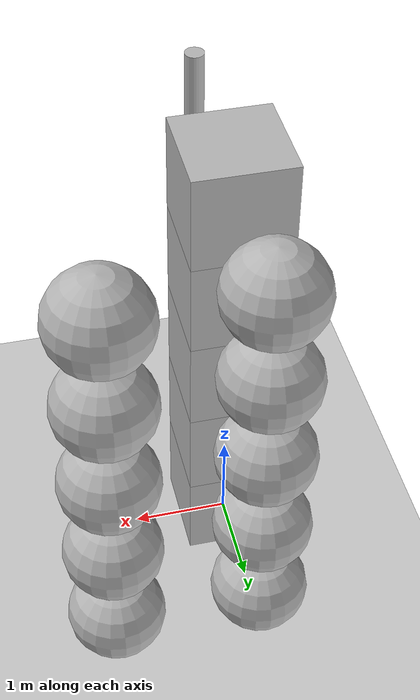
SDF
<?xml version="1.0" ?>
<sdf version="1.4">
  <world name="default">
    <include>
      <uri>model://ground_plane</uri>
    </include>
    <include>
      <uri>model://sun</uri>
    </include>
    <model name="box_1">
      <pose>0 0 .5 0 0 0</pose>
      <link name="link">
        <collision name="collision">
          <geometry>
            <box>
              <size>1 1 1</size>
            </box>
          </geometry>
        </collision>
        <visual name="visual">
          <geometry>
            <box>
              <size>1 1 1</size>
            </box>
          </geometry>
          <material>
            <script>Gazebo/WoodPallet</script>
          </material>
        </visual>
      </link>
    </model>
    <model name="box_2">
      <pose>0 0 1.5 0 0 0</pose>
      <link name="link">
        <collision name="collision">
          <geometry>
            <box>
              <size>1 1 1</size>
            </box>
          </geometry>
        </collision>
        <visual name="visual">
          <geometry>
            <box>
              <size>1 1 1</size>
            </box>
          </geometry>
          <material>
            <script>Gazebo/WoodPallet</script>
          </material>
        </visual>
      </link>
    </model>
    <model name="box_3">
      <pose>0 0 2.5 0 0 0</pose>
      <link name="link">
        <collision name="collision">
          <geometry>
            <box>
              <size>1 1 1</size>
            </box>
          </geometry>
        </collision>
        <visual name="visual">
          <geometry>
            <box>
              <size>1 1 1</size>
            </box>
          </geometry>
          <material>
            <script>Gazebo/WoodPallet</script>
          </material>
        </visual>
      </link>
    </model>
    <model name="box_4">
      <pose>0 0 3.5 0 0 0</pose>
      <link name="link">
        <collision name="collision">
          <geometry>
            <box>
              <size>1 1 1</size>
            </box>
          </geometry>
        </collision>
        <visual name="visual">
          <geometry>
            <box>
              <size>1 1 1</size>
            </box>
          </geometry>
          <material>
            <script>Gazebo/WoodPallet</script>
          </material>
        </visual>
      </link>
    </model>
    <model name="box_5">
      <pose>0 0 4.5 0 0 0</pose>
      <link name="link">
        <collision name="collision">
          <geometry>
            <box>
              <size>1 1 1</size>
            </box>
          </geometry>
        </collision>
        <visual name="visual">
          <geometry>
            <box>
              <size>1 1 1</size>
            </box>
          </geometry>
          <material>
            <script>Gazebo/WoodPallet</script>
          </material>
        </visual>
      </link>
    </model>
    <model name="sphere_1">
      <pose>0 1.5 0.5 0 0 0</pose>
      <link name="link">
        <collision name="collision">
          <geometry>
            <sphere>
              <radius>0.5</radius>
            </sphere>
          </geometry>
          <surface>
            <contact>
              <ode>
                <soft_erp>1.0</soft_erp>
                <max_vel>0</max_vel>
              </ode>
            </contact>
          </surface>
        </collision>
        <visual name="visual">
          <geometry>
            <sphere>
              <radius>0.5</radius>
            </sphere>
          </geometry>
          <material>
            <script>Gazebo/WoodPallet</script>
          </material>
        </visual>
      </link>
    </model>
    <model name="sphere_2">
      <pose>0 1.5 1.5 0 0 0</pose>
      <link name="link">
        <collision name="collision">
          <geometry>
            <sphere>
              <radius>0.5</radius>
            </sphere>
          </geometry>
          <surface>
            <contact>
              <ode>
                <soft_erp>1.0</soft_erp>
                <max_vel>0</max_vel>
              </ode>
            </contact>
          </surface>
        </collision>
        <visual name="visual">
          <geometry>
            <sphere>
              <radius>0.5</radius>
            </sphere>
          </geometry>
          <material>
            <script>Gazebo/WoodPallet</script>
          </material>
        </visual>
      </link>
    </model>
    <model name="sphere_3">
      <pose>0 1.5 2.5 0 0 0</pose>
      <link name="link">
        <collision name="collision">
          <geometry>
            <sphere>
              <radius>0.5</radius>
            </sphere>
          </geometry>
          <surface>
            <contact>
              <ode>
                <soft_erp>1.0</soft_erp>
                <max_vel>0</max_vel>
              </ode>
            </contact>
          </surface>
        </collision>
        <visual name="visual">
          <geometry>
            <sphere>
              <radius>0.5</radius>
            </sphere>
          </geometry>
          <material>
            <script>Gazebo/WoodPallet</script>
          </material>
        </visual>
      </link>
    </model>
    <model name="sphere_4">
      <pose>0 1.5 3.5 0 0 0</pose>
      <link name="link">
        <collision name="collision">
          <geometry>
            <sphere>
              <radius>0.5</radius>
            </sphere>
          </geometry>
          <surface>
            <contact>
              <ode>
                <soft_erp>1.0</soft_erp>
                <max_vel>0</max_vel>
              </ode>
            </contact>
          </surface>
        </collision>
        <visual name="visual">
          <geometry>
            <sphere>
              <radius>0.5</radius>
            </sphere>
          </geometry>
          <material>
            <script>Gazebo/WoodPallet</script>
          </material>
        </visual>
      </link>
    </model>
    <model name="sphere_5">
      <pose>0 1.5 4.5 0 0 0</pose>
      <link name="link">
        <collision name="collision">
          <geometry>
            <sphere>
              <radius>0.5</radius>
            </sphere>
          </geometry>
          <surface>
            <contact>
              <ode>
                <soft_erp>1.0</soft_erp>
                <max_vel>0</max_vel>
              </ode>
            </contact>
          </surface>
        </collision>
        <visual name="visual">
          <geometry>
            <sphere>
              <radius>0.5</radius>
            </sphere>
          </geometry>
          <material>
            <script>Gazebo/WoodPallet</script>
          </material>
        </visual>
      </link>
    </model>
    <model name="sphere_1a">
      <pose>1.5 1.5 0.5 0 0 0</pose>
      <link name="link">
        <collision name="collision">
          <geometry>
            <sphere>
              <radius>0.5</radius>
            </sphere>
          </geometry>
        </collision>
        <visual name="visual">
          <geometry>
            <sphere>
              <radius>0.5</radius>
            </sphere>
          </geometry>
          <material>
            <script>Gazebo/WoodPallet</script>
          </material>
        </visual>
      </link>
    </model>
    <model name="sphere_2a">
      <pose>1.5 1.5 1.5 0 0 0</pose>
      <link name="link">
        <collision name="collision">
          <geometry>
            <sphere>
              <radius>0.5</radius>
            </sphere>
          </geometry>
        </collision>
        <visual name="visual">
          <geometry>
            <sphere>
              <radius>0.5</radius>
            </sphere>
          </geometry>
          <material>
            <script>Gazebo/WoodPallet</script>
          </material>
        </visual>
      </link>
    </model>
    <model name="sphere_3a">
      <pose>1.5 1.5 2.5 0 0 0</pose>
      <link name="link">
        <collision name="collision">
          <geometry>
            <sphere>
              <radius>0.5</radius>
            </sphere>
          </geometry>
        </collision>
        <visual name="visual">
          <geometry>
            <sphere>
              <radius>0.5</radius>
            </sphere>
          </geometry>
          <material>
            <script>Gazebo/WoodPallet</script>
          </material>
        </visual>
      </link>
    </model>
    <model name="sphere_4a">
      <pose>1.5 1.5 3.5 0 0 0</pose>
      <link name="link">
        <collision name="collision">
          <geometry>
            <sphere>
              <radius>0.5</radius>
            </sphere>
          </geometry>
        </collision>
        <visual name="visual">
          <geometry>
            <sphere>
              <radius>0.5</radius>
            </sphere>
          </geometry>
          <material>
            <script>Gazebo/WoodPallet</script>
          </material>
        </visual>
      </link>
    </model>
    <model name="sphere_5a">
      <pose>1.5 1.5 4.5 0 0 0</pose>
      <link name="link">
        <collision name="collision">
          <geometry>
            <sphere>
              <radius>0.5</radius>
            </sphere>
          </geometry>
        </collision>
        <visual name="visual">
          <geometry>
            <sphere>
              <radius>0.5</radius>
            </sphere>
          </geometry>
          <material>
            <script>Gazebo/WoodPallet</script>
          </material>
        </visual>
      </link>
    </model>
    <model name="cylinder_1">
      <pose>0 -1.5 0.5 0 0 0</pose>
      <link name="link">
        <collision name="collision">
          <geometry>
            <cylinder>
              <radius>0.1</radius>
              <length>1.0</length>
            </cylinder>
          </geometry>
        </collision>
        <visual name="visual">
          <geometry>
            <cylinder>
              <radius>0.1</radius>
              <length>1.0</length>
            </cylinder>
          </geometry>
          <material>
            <script>Gazebo/WoodPallet</script>
          </material>
        </visual>
      </link>
    </model>
    <model name="cylinder_2">
      <pose>0 -1.5 1.5 0 0 0</pose>
      <link name="link">
        <collision name="collision">
          <geometry>
            <cylinder>
              <radius>0.1</radius>
              <length>1.0</length>
            </cylinder>
          </geometry>
        </collision>
        <visual name="visual">
          <geometry>
            <cylinder>
              <radius>0.1</radius>
              <length>1.0</length>
            </cylinder>
          </geometry>
          <material>
            <script>Gazebo/WoodPallet</script>
          </material>
        </visual>
      </link>
    </model>
    <model name="cylinder_3">
      <pose>0 -1.5 2.5 0 0 0</pose>
      <link name="link">
        <collision name="collision">
          <geometry>
            <cylinder>
              <radius>0.1</radius>
              <length>1.0</length>
            </cylinder>
          </geometry>
        </collision>
        <visual name="visual">
          <geometry>
            <cylinder>
              <radius>0.1</radius>
              <length>1.0</length>
            </cylinder>
          </geometry>
          <material>
            <script>Gazebo/WoodPallet</script>
          </material>
        </visual>
      </link>
    </model>
    <model name="cylinder_4">
      <pose>0 -1.5 3.5 0 0 0</pose>
      <link name="link">
        <collision name="collision">
          <geometry>
            <cylinder>
              <radius>0.1</radius>
              <length>1.0</length>
            </cylinder>
          </geometry>
        </collision>
        <visual name="visual">
          <geometry>
            <cylinder>
              <radius>0.1</radius>
              <length>1.0</length>
            </cylinder>
          </geometry>
          <material>
            <script>Gazebo/WoodPallet</script>
          </material>
        </visual>
      </link>
    </model>
    <model name="cylinder_5">
      <pose>0 -1.5 4.5 0 0 0</pose>
      <link name="link">
        <collision name="collision">
          <geometry>
            <cylinder>
              <radius>0.1</radius>
              <length>1.0</length>
            </cylinder>
          </geometry>
        </collision>
        <visual name="visual">
          <geometry>
            <cylinder>
              <radius>0.1</radius>
              <length>1.0</length>
            </cylinder>
          </geometry>
          <material>
            <script>Gazebo/WoodPallet</script>
          </material>
        </visual>
      </link>
    </model>
  </world>
</sdf>
